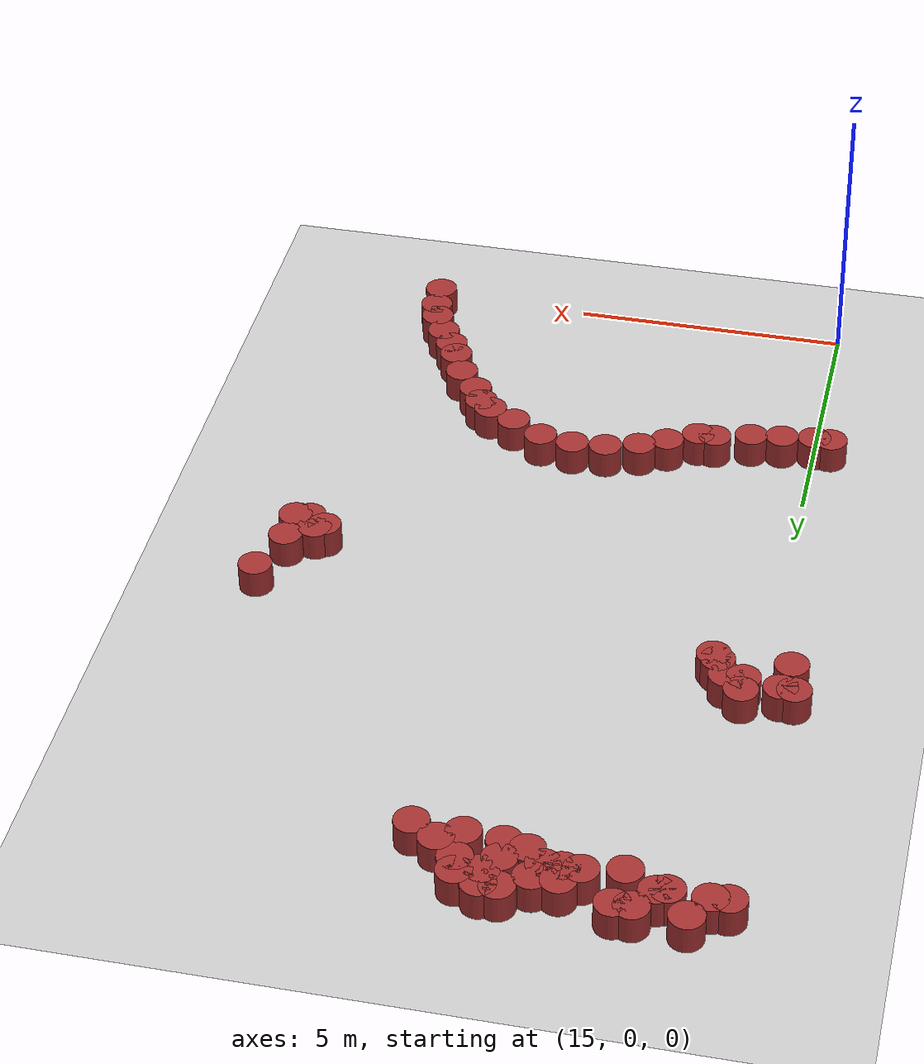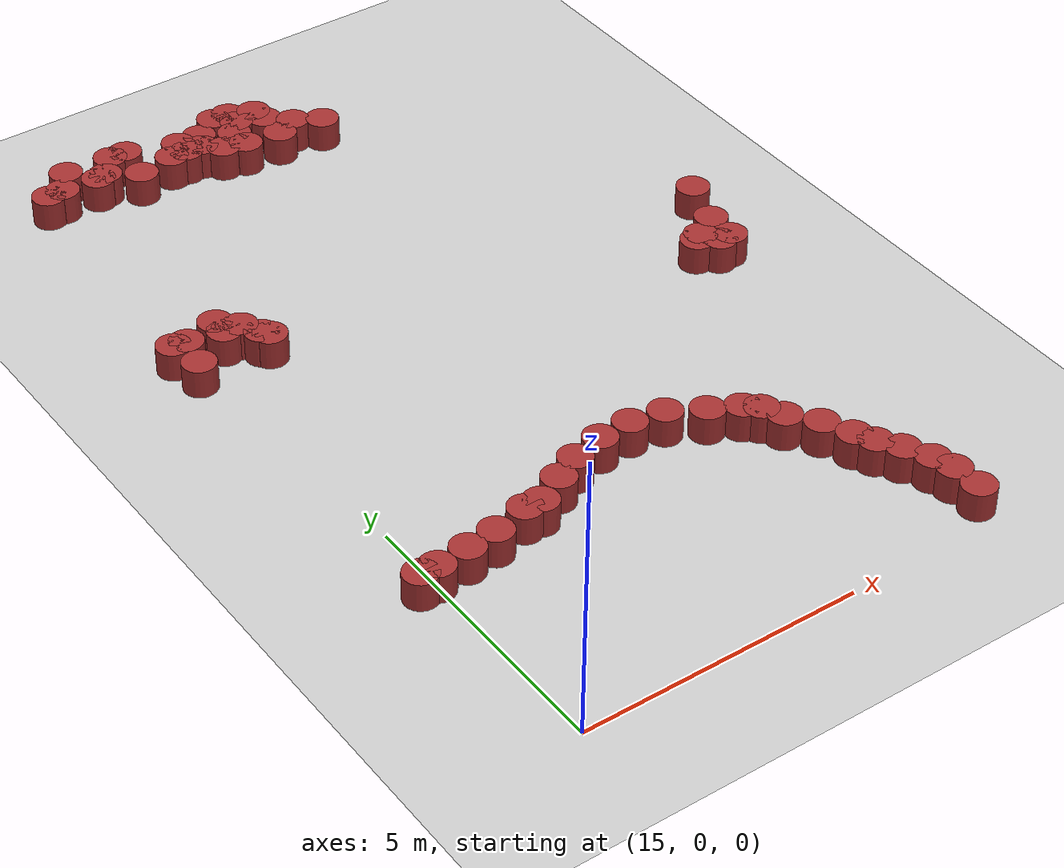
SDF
<sdf version="1.6">
 <world name="default">
  <model name="ground_plane">
   <static>1</static>
   <link name="link">
    <collision name="collision">
     <geometry><plane><normal>0 0 1</normal><size>100 100</size></plane></geometry>
     <surface><friction><ode><mu>100</mu><mu2>50</mu2></ode></friction></surface>
    </collision>
    <visual name="visual">
     <cast_shadows>0</cast_shadows>
     <geometry><plane><normal>0 0 1</normal><size>100 100</size></plane></geometry>
     <material>
      <script><uri>file://media/materials/scripts/gazebo.material</uri><name>Gazebo/Grey</name></script>
     </material>
    </visual>
   </link>
  </model>
  <model name="unit_cylinder_142">
   <static>1</static>
   <pose>15.8836 15.2044 0 0 -0 0</pose>
   <link name="link">
    <inertial>
     <mass>1</mass>
     <inertia><ixx>0.145833</ixx><ixy>0</ixy><ixz>0</ixz><iyy>0.145833</iyy><iyz>0</iyz><izz>0.125</izz></inertia>
    </inertial>
    <collision name="collision">
     <geometry><cylinder><radius>0.3</radius><length>1</length></cylinder></geometry>
    </collision>
    <visual name="visual">
     <geometry><cylinder><radius>0.3</radius><length>1</length></cylinder></geometry>
     <material><ambient>0.648 0.192 0.192 1</ambient><diffuse>0.648 0.192 0.192 1</diffuse></material>
     <material>
      <script><name>Gazebo/Grey</name><uri>file://media/materials/scripts/gazebo.material</uri></script>
     </material>
    </visual>
   </link>
  </model>
  <model name="unit_cylinder_145">
   <static>1</static>
   <pose>19.0275 15.414 0 0 -0 0</pose>
   <link name="link">
    <inertial>
     <mass>1</mass>
     <inertia><ixx>0.145833</ixx><ixy>0</ixy><ixz>0</ixz><iyy>0.145833</iyy><iyz>0</iyz><izz>0.125</izz></inertia>
    </inertial>
    <collision name="collision">
     <geometry><cylinder><radius>0.3</radius><length>1</length></cylinder></geometry>
    </collision>
    <visual name="visual">
     <geometry><cylinder><radius>0.3</radius><length>1</length></cylinder></geometry>
     <material><ambient>0.648 0.192 0.192 1</ambient><diffuse>0.648 0.192 0.192 1</diffuse></material>
     <material>
      <script><name>Gazebo/Grey</name><uri>file://media/materials/scripts/gazebo.material</uri></script>
     </material>
    </visual>
   </link>
  </model>
  <model name="unit_cylinder_150">
   <static>1</static>
   <pose>19.9186 14.5088 0 0 -0 0</pose>
   <link name="link">
    <inertial>
     <mass>1</mass>
     <inertia><ixx>0.145833</ixx><ixy>0</ixy><ixz>0</ixz><iyy>0.145833</iyy><iyz>0</iyz><izz>0.125</izz></inertia>
    </inertial>
    <collision name="collision">
     <geometry><cylinder><radius>0.3</radius><length>1</length></cylinder></geometry>
    </collision>
    <visual name="visual">
     <geometry><cylinder><radius>0.3</radius><length>1</length></cylinder></geometry>
     <material><ambient>0.648 0.192 0.192 1</ambient><diffuse>0.648 0.192 0.192 1</diffuse></material>
     <material>
      <script><name>Gazebo/Grey</name><uri>file://media/materials/scripts/gazebo.material</uri></script>
     </material>
    </visual>
   </link>
  </model>
  <model name="unit_cylinder_153">
   <static>1</static>
   <pose>14.7 3.6 0 0 -0 0</pose>
   <link name="link">
    <inertial>
     <mass>1</mass>
     <inertia><ixx>0.145833</ixx><ixy>0</ixy><ixz>0</ixz><iyy>0.145833</iyy><iyz>0</iyz><izz>0.125</izz></inertia>
    </inertial>
    <collision name="collision">
     <geometry><cylinder><radius>0.3</radius><length>1</length></cylinder></geometry>
    </collision>
    <visual name="visual">
     <geometry><cylinder><radius>0.3</radius><length>1</length></cylinder></geometry>
     <material><ambient>0.648 0.192 0.192 1</ambient><diffuse>0.648 0.192 0.192 1</diffuse></material>
     <material>
      <script><name>Gazebo/Grey</name><uri>file://media/materials/scripts/gazebo.material</uri></script>
     </material>
    </visual>
   </link>
  </model>
  <model name="unit_cylinder_154">
   <static>1</static>
   <pose>15.5873 3.66758 0 0 -0 0</pose>
   <link name="link">
    <inertial>
     <mass>1</mass>
     <inertia><ixx>0.145833</ixx><ixy>0</ixy><ixz>0</ixz><iyy>0.145833</iyy><iyz>0</iyz><izz>0.125</izz></inertia>
    </inertial>
    <collision name="collision">
     <geometry><cylinder><radius>0.3</radius><length>1</length></cylinder></geometry>
    </collision>
    <visual name="visual">
     <geometry><cylinder><radius>0.3</radius><length>1</length></cylinder></geometry>
     <material><ambient>0.648 0.192 0.192 1</ambient><diffuse>0.648 0.192 0.192 1</diffuse></material>
     <material>
      <script><name>Gazebo/Grey</name><uri>file://media/materials/scripts/gazebo.material</uri></script>
     </material>
    </visual>
   </link>
  </model>
  <model name="unit_cylinder_155">
   <static>1</static>
   <pose>16.1466 3.7358 0 0 -0 0</pose>
   <link name="link">
    <inertial>
     <mass>1</mass>
     <inertia><ixx>0.145833</ixx><ixy>0</ixy><ixz>0</ixz><iyy>0.145833</iyy><iyz>0</iyz><izz>0.125</izz></inertia>
    </inertial>
    <collision name="collision">
     <geometry><cylinder><radius>0.3</radius><length>1</length></cylinder></geometry>
    </collision>
    <visual name="visual">
     <geometry><cylinder><radius>0.3</radius><length>1</length></cylinder></geometry>
     <material><ambient>0.648 0.192 0.192 1</ambient><diffuse>0.648 0.192 0.192 1</diffuse></material>
     <material>
      <script><name>Gazebo/Grey</name><uri>file://media/materials/scripts/gazebo.material</uri></script>
     </material>
    </visual>
   </link>
  </model>
  <model name="unit_cylinder_159">
   <static>1</static>
   <pose>15 3.6 0 0 -0 0</pose>
   <link name="link">
    <inertial>
     <mass>1</mass>
     <inertia><ixx>0.145833</ixx><ixy>0</ixy><ixz>0</ixz><iyy>0.145833</iyy><iyz>0</iyz><izz>0.125</izz></inertia>
    </inertial>
    <collision name="collision">
     <geometry><cylinder><radius>0.3</radius><length>1</length></cylinder></geometry>
    </collision>
    <visual name="visual">
     <geometry><cylinder><radius>0.3</radius><length>1</length></cylinder></geometry>
     <material><ambient>0.648 0.192 0.192 1</ambient><diffuse>0.648 0.192 0.192 1</diffuse></material>
     <material>
      <script><name>Gazebo/Grey</name><uri>file://media/materials/scripts/gazebo.material</uri></script>
     </material>
    </visual>
   </link>
  </model>
  <model name="unit_cylinder_165">
   <static>1</static>
   <pose>19.4618 14.7761 0 0 -0 0</pose>
   <link name="link">
    <inertial>
     <mass>1</mass>
     <inertia><ixx>0.145833</ixx><ixy>0</ixy><ixz>0</ixz><iyy>0.145833</iyy><iyz>0</iyz><izz>0.125</izz></inertia>
    </inertial>
    <collision name="collision">
     <geometry><cylinder><radius>0.3</radius><length>1</length></cylinder></geometry>
    </collision>
    <visual name="visual">
     <geometry><cylinder><radius>0.3</radius><length>1</length></cylinder></geometry>
     <material><ambient>0.648 0.192 0.192 1</ambient><diffuse>0.648 0.192 0.192 1</diffuse></material>
     <material>
      <script><name>Gazebo/Grey</name><uri>file://media/materials/scripts/gazebo.material</uri></script>
     </material>
    </visual>
   </link>
  </model>
  <model name="unit_cylinder_166">
   <static>1</static>
   <pose>15.3 10.2 0 0 -0 0</pose>
   <link name="link">
    <inertial>
     <mass>1</mass>
     <inertia><ixx>0.145833</ixx><ixy>0</ixy><ixz>0</ixz><iyy>0.145833</iyy><iyz>0</iyz><izz>0.125</izz></inertia>
    </inertial>
    <collision name="collision">
     <geometry><cylinder><radius>0.3</radius><length>1</length></cylinder></geometry>
    </collision>
    <visual name="visual">
     <geometry><cylinder><radius>0.3</radius><length>1</length></cylinder></geometry>
     <material><ambient>0.648 0.192 0.192 1</ambient><diffuse>0.648 0.192 0.192 1</diffuse></material>
     <material>
      <script><name>Gazebo/Grey</name><uri>file://media/materials/scripts/gazebo.material</uri></script>
     </material>
    </visual>
   </link>
  </model>
  <model name="unit_cylinder_167">
   <static>1</static>
   <pose>15.3 10.5 0 0 -0 0</pose>
   <link name="link">
    <inertial>
     <mass>1</mass>
     <inertia><ixx>0.145833</ixx><ixy>0</ixy><ixz>0</ixz><iyy>0.145833</iyy><iyz>0</iyz><izz>0.125</izz></inertia>
    </inertial>
    <collision name="collision">
     <geometry><cylinder><radius>0.3</radius><length>1</length></cylinder></geometry>
    </collision>
    <visual name="visual">
     <geometry><cylinder><radius>0.3</radius><length>1</length></cylinder></geometry>
     <material><ambient>0.648 0.192 0.192 1</ambient><diffuse>0.648 0.192 0.192 1</diffuse></material>
     <material>
      <script><name>Gazebo/Grey</name><uri>file://media/materials/scripts/gazebo.material</uri></script>
     </material>
    </visual>
   </link>
  </model>
  <model name="unit_cylinder_169">
   <static>1</static>
   <pose>15.0403 15.1927 0 0 -0 0</pose>
   <link name="link">
    <inertial>
     <mass>1</mass>
     <inertia><ixx>0.145833</ixx><ixy>0</ixy><ixz>0</ixz><iyy>0.145833</iyy><iyz>0</iyz><izz>0.125</izz></inertia>
    </inertial>
    <collision name="collision">
     <geometry><cylinder><radius>0.3</radius><length>1</length></cylinder></geometry>
    </collision>
    <visual name="visual">
     <geometry><cylinder><radius>0.3</radius><length>1</length></cylinder></geometry>
     <material><ambient>0.648 0.192 0.192 1</ambient><diffuse>0.648 0.192 0.192 1</diffuse></material>
     <material>
      <script><name>Gazebo/Grey</name><uri>file://media/materials/scripts/gazebo.material</uri></script>
     </material>
    </visual>
   </link>
  </model>
  <model name="unit_cylinder_177">
   <static>1</static>
   <pose>15.6 10.2 0 0 -0 0</pose>
   <link name="link">
    <inertial>
     <mass>1</mass>
     <inertia><ixx>0.145833</ixx><ixy>0</ixy><ixz>0</ixz><iyy>0.145833</iyy><iyz>0</iyz><izz>0.125</izz></inertia>
    </inertial>
    <collision name="collision">
     <geometry><cylinder><radius>0.3</radius><length>1</length></cylinder></geometry>
    </collision>
    <visual name="visual">
     <geometry><cylinder><radius>0.3</radius><length>1</length></cylinder></geometry>
     <material><ambient>0.648 0.192 0.192 1</ambient><diffuse>0.648 0.192 0.192 1</diffuse></material>
     <material>
      <script><name>Gazebo/Grey</name><uri>file://media/materials/scripts/gazebo.material</uri></script>
     </material>
    </visual>
   </link>
  </model>
  <model name="unit_cylinder_186">
   <static>1</static>
   <pose>14.7565 15.1673 0 0 -0 0</pose>
   <link name="link">
    <inertial>
     <mass>1</mass>
     <inertia><ixx>0.145833</ixx><ixy>0</ixy><ixz>0</ixz><iyy>0.145833</iyy><iyz>0</iyz><izz>0.125</izz></inertia>
    </inertial>
    <collision name="collision">
     <geometry><cylinder><radius>0.3</radius><length>1</length></cylinder></geometry>
    </collision>
    <visual name="visual">
     <geometry><cylinder><radius>0.3</radius><length>1</length></cylinder></geometry>
     <material><ambient>0.648 0.192 0.192 1</ambient><diffuse>0.648 0.192 0.192 1</diffuse></material>
     <material>
      <script><name>Gazebo/Grey</name><uri>file://media/materials/scripts/gazebo.material</uri></script>
     </material>
    </visual>
   </link>
  </model>
  <model name="unit_cylinder_187">
   <static>1</static>
   <pose>15.7201 15.1528 0 0 -0 0</pose>
   <link name="link">
    <inertial>
     <mass>1</mass>
     <inertia><ixx>0.145833</ixx><ixy>0</ixy><ixz>0</ixz><iyy>0.145833</iyy><iyz>0</iyz><izz>0.125</izz></inertia>
    </inertial>
    <collision name="collision">
     <geometry><cylinder><radius>0.3</radius><length>1</length></cylinder></geometry>
    </collision>
    <visual name="visual">
     <geometry><cylinder><radius>0.3</radius><length>1</length></cylinder></geometry>
     <material><ambient>0.648 0.192 0.192 1</ambient><diffuse>0.648 0.192 0.192 1</diffuse></material>
     <material>
      <script><name>Gazebo/Grey</name><uri>file://media/materials/scripts/gazebo.material</uri></script>
     </material>
    </visual>
   </link>
  </model>
  <model name="unit_cylinder_191">
   <static>1</static>
   <pose>16.2 15.6 0 0 -0 0</pose>
   <link name="link">
    <inertial>
     <mass>1</mass>
     <inertia><ixx>0.145833</ixx><ixy>0</ixy><ixz>0</ixz><iyy>0.145833</iyy><iyz>0</iyz><izz>0.125</izz></inertia>
    </inertial>
    <collision name="collision">
     <geometry><cylinder><radius>0.3</radius><length>1</length></cylinder></geometry>
    </collision>
    <visual name="visual">
     <geometry><cylinder><radius>0.3</radius><length>1</length></cylinder></geometry>
     <material><ambient>0.648 0.192 0.192 1</ambient><diffuse>0.648 0.192 0.192 1</diffuse></material>
     <material>
      <script><name>Gazebo/Grey</name><uri>file://media/materials/scripts/gazebo.material</uri></script>
     </material>
    </visual>
   </link>
  </model>
  <model name="unit_cylinder_197">
   <static>1</static>
   <pose>16.5 15.6 0 0 -0 0</pose>
   <link name="link">
    <inertial>
     <mass>1</mass>
     <inertia><ixx>0.145833</ixx><ixy>0</ixy><ixz>0</ixz><iyy>0.145833</iyy><iyz>0</iyz><izz>0.125</izz></inertia>
    </inertial>
    <collision name="collision">
     <geometry><cylinder><radius>0.3</radius><length>1</length></cylinder></geometry>
    </collision>
    <visual name="visual">
     <geometry><cylinder><radius>0.3</radius><length>1</length></cylinder></geometry>
     <material><ambient>0.648 0.192 0.192 1</ambient><diffuse>0.648 0.192 0.192 1</diffuse></material>
     <material>
      <script><name>Gazebo/Grey</name><uri>file://media/materials/scripts/gazebo.material</uri></script>
     </material>
    </visual>
   </link>
  </model>
  <model name="unit_cylinder_199">
   <static>1</static>
   <pose>17.6306 4.17821 0 0 -0 0</pose>
   <link name="link">
    <inertial>
     <mass>1</mass>
     <inertia><ixx>0.145833</ixx><ixy>0</ixy><ixz>0</ixz><iyy>0.145833</iyy><iyz>0</iyz><izz>0.125</izz></inertia>
    </inertial>
    <collision name="collision">
     <geometry><cylinder><radius>0.3</radius><length>1</length></cylinder></geometry>
    </collision>
    <visual name="visual">
     <geometry><cylinder><radius>0.3</radius><length>1</length></cylinder></geometry>
     <material><ambient>0.648 0.192 0.192 1</ambient><diffuse>0.648 0.192 0.192 1</diffuse></material>
     <material>
      <script><name>Gazebo/Grey</name><uri>file://media/materials/scripts/gazebo.material</uri></script>
     </material>
    </visual>
   </link>
  </model>
  <model name="unit_cylinder_200">
   <static>1</static>
   <pose>16.8 3.9 0 0 -0 0</pose>
   <link name="link">
    <inertial>
     <mass>1</mass>
     <inertia><ixx>0.145833</ixx><ixy>0</ixy><ixz>0</ixz><iyy>0.145833</iyy><iyz>0</iyz><izz>0.125</izz></inertia>
    </inertial>
    <collision name="collision">
     <geometry><cylinder><radius>0.3</radius><length>1</length></cylinder></geometry>
    </collision>
    <visual name="visual">
     <geometry><cylinder><radius>0.3</radius><length>1</length></cylinder></geometry>
     <material><ambient>0.648 0.192 0.192 1</ambient><diffuse>0.648 0.192 0.192 1</diffuse></material>
     <material>
      <script><name>Gazebo/Grey</name><uri>file://media/materials/scripts/gazebo.material</uri></script>
     </material>
    </visual>
   </link>
  </model>
  <model name="unit_cylinder_203">
   <static>1</static>
   <pose>17.1 3.9 0 0 -0 0</pose>
   <link name="link">
    <inertial>
     <mass>1</mass>
     <inertia><ixx>0.145833</ixx><ixy>0</ixy><ixz>0</ixz><iyy>0.145833</iyy><iyz>0</iyz><izz>0.125</izz></inertia>
    </inertial>
    <collision name="collision">
     <geometry><cylinder><radius>0.3</radius><length>1</length></cylinder></geometry>
    </collision>
    <visual name="visual">
     <geometry><cylinder><radius>0.3</radius><length>1</length></cylinder></geometry>
     <material><ambient>0.648 0.192 0.192 1</ambient><diffuse>0.648 0.192 0.192 1</diffuse></material>
     <material>
      <script><name>Gazebo/Grey</name><uri>file://media/materials/scripts/gazebo.material</uri></script>
     </material>
    </visual>
   </link>
  </model>
  <model name="unit_cylinder_204">
   <static>1</static>
   <pose>17.1 15 0 0 -0 0</pose>
   <link name="link">
    <inertial>
     <mass>1</mass>
     <inertia><ixx>0.145833</ixx><ixy>0</ixy><ixz>0</ixz><iyy>0.145833</iyy><iyz>0</iyz><izz>0.125</izz></inertia>
    </inertial>
    <collision name="collision">
     <geometry><cylinder><radius>0.3</radius><length>1</length></cylinder></geometry>
    </collision>
    <visual name="visual">
     <geometry><cylinder><radius>0.3</radius><length>1</length></cylinder></geometry>
     <material><ambient>0.648 0.192 0.192 1</ambient><diffuse>0.648 0.192 0.192 1</diffuse></material>
     <material>
      <script><name>Gazebo/Grey</name><uri>file://media/materials/scripts/gazebo.material</uri></script>
     </material>
    </visual>
   </link>
  </model>
  <model name="unit_cylinder_212">
   <static>1</static>
   <pose>17.4 15 0 0 -0 0</pose>
   <link name="link">
    <inertial>
     <mass>1</mass>
     <inertia><ixx>0.145833</ixx><ixy>0</ixy><ixz>0</ixz><iyy>0.145833</iyy><iyz>0</iyz><izz>0.125</izz></inertia>
    </inertial>
    <collision name="collision">
     <geometry><cylinder><radius>0.3</radius><length>1</length></cylinder></geometry>
    </collision>
    <visual name="visual">
     <geometry><cylinder><radius>0.3</radius><length>1</length></cylinder></geometry>
     <material><ambient>0.648 0.192 0.192 1</ambient><diffuse>0.648 0.192 0.192 1</diffuse></material>
     <material>
      <script><name>Gazebo/Grey</name><uri>file://media/materials/scripts/gazebo.material</uri></script>
     </material>
    </visual>
   </link>
  </model>
  <model name="unit_cylinder_213">
   <static>1</static>
   <pose>17.4 15.3 0 0 -0 0</pose>
   <link name="link">
    <inertial>
     <mass>1</mass>
     <inertia><ixx>0.145833</ixx><ixy>0</ixy><ixz>0</ixz><iyy>0.145833</iyy><iyz>0</iyz><izz>0.125</izz></inertia>
    </inertial>
    <collision name="collision">
     <geometry><cylinder><radius>0.3</radius><length>1</length></cylinder></geometry>
    </collision>
    <visual name="visual">
     <geometry><cylinder><radius>0.3</radius><length>1</length></cylinder></geometry>
     <material><ambient>0.648 0.192 0.192 1</ambient><diffuse>0.648 0.192 0.192 1</diffuse></material>
     <material>
      <script><name>Gazebo/Grey</name><uri>file://media/materials/scripts/gazebo.material</uri></script>
     </material>
    </visual>
   </link>
  </model>
  <model name="unit_cylinder_218">
   <static>1</static>
   <pose>18.0017 14.7329 0 0 -0 0</pose>
   <link name="link">
    <inertial>
     <mass>1</mass>
     <inertia><ixx>0.145833</ixx><ixy>0</ixy><ixz>0</ixz><iyy>0.145833</iyy><iyz>0</iyz><izz>0.125</izz></inertia>
    </inertial>
    <collision name="collision">
     <geometry><cylinder><radius>0.3</radius><length>1</length></cylinder></geometry>
    </collision>
    <visual name="visual">
     <geometry><cylinder><radius>0.3</radius><length>1</length></cylinder></geometry>
     <material><ambient>0.648 0.192 0.192 1</ambient><diffuse>0.648 0.192 0.192 1</diffuse></material>
     <material>
      <script><name>Gazebo/Grey</name><uri>file://media/materials/scripts/gazebo.material</uri></script>
     </material>
    </visual>
   </link>
  </model>
  <model name="unit_cylinder_219">
   <static>1</static>
   <pose>17.7 15 0 0 -0 0</pose>
   <link name="link">
    <inertial>
     <mass>1</mass>
     <inertia><ixx>0.145833</ixx><ixy>0</ixy><ixz>0</ixz><iyy>0.145833</iyy><iyz>0</iyz><izz>0.125</izz></inertia>
    </inertial>
    <collision name="collision">
     <geometry><cylinder><radius>0.3</radius><length>1</length></cylinder></geometry>
    </collision>
    <visual name="visual">
     <geometry><cylinder><radius>0.3</radius><length>1</length></cylinder></geometry>
     <material><ambient>0.648 0.192 0.192 1</ambient><diffuse>0.648 0.192 0.192 1</diffuse></material>
     <material>
      <script><name>Gazebo/Grey</name><uri>file://media/materials/scripts/gazebo.material</uri></script>
     </material>
    </visual>
   </link>
  </model>
  <model name="unit_cylinder_226">
   <static>1</static>
   <pose>18.3 15.6 0 0 -0 0</pose>
   <link name="link">
    <inertial>
     <mass>1</mass>
     <inertia><ixx>0.145833</ixx><ixy>0</ixy><ixz>0</ixz><iyy>0.145833</iyy><iyz>0</iyz><izz>0.125</izz></inertia>
    </inertial>
    <collision name="collision">
     <geometry><cylinder><radius>0.3</radius><length>1</length></cylinder></geometry>
    </collision>
    <visual name="visual">
     <geometry><cylinder><radius>0.3</radius><length>1</length></cylinder></geometry>
     <material><ambient>0.648 0.192 0.192 1</ambient><diffuse>0.648 0.192 0.192 1</diffuse></material>
     <material>
      <script><name>Gazebo/Grey</name><uri>file://media/materials/scripts/gazebo.material</uri></script>
     </material>
    </visual>
   </link>
  </model>
  <model name="unit_cylinder_227">
   <static>1</static>
   <pose>18.6 15.3 0 0 -0 0</pose>
   <link name="link">
    <inertial>
     <mass>1</mass>
     <inertia><ixx>0.145833</ixx><ixy>0</ixy><ixz>0</ixz><iyy>0.145833</iyy><iyz>0</iyz><izz>0.125</izz></inertia>
    </inertial>
    <collision name="collision">
     <geometry><cylinder><radius>0.3</radius><length>1</length></cylinder></geometry>
    </collision>
    <visual name="visual">
     <geometry><cylinder><radius>0.3</radius><length>1</length></cylinder></geometry>
     <material><ambient>0.648 0.192 0.192 1</ambient><diffuse>0.648 0.192 0.192 1</diffuse></material>
     <material>
      <script><name>Gazebo/Grey</name><uri>file://media/materials/scripts/gazebo.material</uri></script>
     </material>
    </visual>
   </link>
  </model>
  <model name="unit_cylinder_228">
   <static>1</static>
   <pose>18.6 15.6 0 0 -0 0</pose>
   <link name="link">
    <inertial>
     <mass>1</mass>
     <inertia><ixx>0.145833</ixx><ixy>0</ixy><ixz>0</ixz><iyy>0.145833</iyy><iyz>0</iyz><izz>0.125</izz></inertia>
    </inertial>
    <collision name="collision">
     <geometry><cylinder><radius>0.3</radius><length>1</length></cylinder></geometry>
    </collision>
    <visual name="visual">
     <geometry><cylinder><radius>0.3</radius><length>1</length></cylinder></geometry>
     <material><ambient>0.648 0.192 0.192 1</ambient><diffuse>0.648 0.192 0.192 1</diffuse></material>
     <material>
      <script><name>Gazebo/Grey</name><uri>file://media/materials/scripts/gazebo.material</uri></script>
     </material>
    </visual>
   </link>
  </model>
  <model name="unit_cylinder_241">
   <static>1</static>
   <pose>18.7087 4.56925 0 0 -0 0</pose>
   <link name="link">
    <inertial>
     <mass>1</mass>
     <inertia><ixx>0.145833</ixx><ixy>0</ixy><ixz>0</ixz><iyy>0.145833</iyy><iyz>0</iyz><izz>0.125</izz></inertia>
    </inertial>
    <collision name="collision">
     <geometry><cylinder><radius>0.3</radius><length>1</length></cylinder></geometry>
    </collision>
    <visual name="visual">
     <geometry><cylinder><radius>0.3</radius><length>1</length></cylinder></geometry>
     <material><ambient>0.648 0.192 0.192 1</ambient><diffuse>0.648 0.192 0.192 1</diffuse></material>
     <material>
      <script><name>Gazebo/Grey</name><uri>file://media/materials/scripts/gazebo.material</uri></script>
     </material>
    </visual>
   </link>
  </model>
  <model name="unit_cylinder_242">
   <static>1</static>
   <pose>18.1102 4.40651 0 0 -0 0</pose>
   <link name="link">
    <inertial>
     <mass>1</mass>
     <inertia><ixx>0.145833</ixx><ixy>0</ixy><ixz>0</ixz><iyy>0.145833</iyy><iyz>0</iyz><izz>0.125</izz></inertia>
    </inertial>
    <collision name="collision">
     <geometry><cylinder><radius>0.3</radius><length>1</length></cylinder></geometry>
    </collision>
    <visual name="visual">
     <geometry><cylinder><radius>0.3</radius><length>1</length></cylinder></geometry>
     <material><ambient>0.648 0.192 0.192 1</ambient><diffuse>0.648 0.192 0.192 1</diffuse></material>
     <material>
      <script><name>Gazebo/Grey</name><uri>file://media/materials/scripts/gazebo.material</uri></script>
     </material>
    </visual>
   </link>
  </model>
  <model name="unit_cylinder_246">
   <static>1</static>
   <pose>19.3171 4.60775 0 0 -0 0</pose>
   <link name="link">
    <inertial>
     <mass>1</mass>
     <inertia><ixx>0.145833</ixx><ixy>0</ixy><ixz>0</ixz><iyy>0.145833</iyy><iyz>0</iyz><izz>0.125</izz></inertia>
    </inertial>
    <collision name="collision">
     <geometry><cylinder><radius>0.3</radius><length>1</length></cylinder></geometry>
    </collision>
    <visual name="visual">
     <geometry><cylinder><radius>0.3</radius><length>1</length></cylinder></geometry>
     <material><ambient>0.648 0.192 0.192 1</ambient><diffuse>0.648 0.192 0.192 1</diffuse></material>
     <material>
      <script><name>Gazebo/Grey</name><uri>file://media/materials/scripts/gazebo.material</uri></script>
     </material>
    </visual>
   </link>
  </model>
  <model name="unit_cylinder_250">
   <static>1</static>
   <pose>15.3393 15.6295 0 0 -0 0</pose>
   <link name="link">
    <inertial>
     <mass>1</mass>
     <inertia><ixx>0.145833</ixx><ixy>0</ixy><ixz>0</ixz><iyy>0.145833</iyy><iyz>0</iyz><izz>0.125</izz></inertia>
    </inertial>
    <collision name="collision">
     <geometry><cylinder><radius>0.3</radius><length>1</length></cylinder></geometry>
    </collision>
    <visual name="visual">
     <geometry><cylinder><radius>0.3</radius><length>1</length></cylinder></geometry>
     <material><ambient>0.648 0.192 0.192 1</ambient><diffuse>0.648 0.192 0.192 1</diffuse></material>
     <material>
      <script><name>Gazebo/Grey</name><uri>file://media/materials/scripts/gazebo.material</uri></script>
     </material>
    </visual>
   </link>
  </model>
  <model name="unit_cylinder_255">
   <static>1</static>
   <pose>20.5074 4.15937 0 0 -0 0</pose>
   <link name="link">
    <inertial>
     <mass>1</mass>
     <inertia><ixx>0.145833</ixx><ixy>0</ixy><ixz>0</ixz><iyy>0.145833</iyy><iyz>0</iyz><izz>0.125</izz></inertia>
    </inertial>
    <collision name="collision">
     <geometry><cylinder><radius>0.3</radius><length>1</length></cylinder></geometry>
    </collision>
    <visual name="visual">
     <geometry><cylinder><radius>0.3</radius><length>1</length></cylinder></geometry>
     <material><ambient>0.648 0.192 0.192 1</ambient><diffuse>0.648 0.192 0.192 1</diffuse></material>
     <material>
      <script><name>Gazebo/Grey</name><uri>file://media/materials/scripts/gazebo.material</uri></script>
     </material>
    </visual>
   </link>
  </model>
  <model name="unit_cylinder_256">
   <static>1</static>
   <pose>19.9292 4.49893 0 0 -0 0</pose>
   <link name="link">
    <inertial>
     <mass>1</mass>
     <inertia><ixx>0.145833</ixx><ixy>0</ixy><ixz>0</ixz><iyy>0.145833</iyy><iyz>0</iyz><izz>0.125</izz></inertia>
    </inertial>
    <collision name="collision">
     <geometry><cylinder><radius>0.3</radius><length>1</length></cylinder></geometry>
    </collision>
    <visual name="visual">
     <geometry><cylinder><radius>0.3</radius><length>1</length></cylinder></geometry>
     <material><ambient>0.648 0.192 0.192 1</ambient><diffuse>0.648 0.192 0.192 1</diffuse></material>
     <material>
      <script><name>Gazebo/Grey</name><uri>file://media/materials/scripts/gazebo.material</uri></script>
     </material>
    </visual>
   </link>
  </model>
  <model name="unit_cylinder_257">
   <static>1</static>
   <pose>15.7901 9.84375 0 0 -0 0</pose>
   <link name="link">
    <inertial>
     <mass>1</mass>
     <inertia><ixx>0.145833</ixx><ixy>0</ixy><ixz>0</ixz><iyy>0.145833</iyy><iyz>0</iyz><izz>0.125</izz></inertia>
    </inertial>
    <collision name="collision">
     <geometry><cylinder><radius>0.3</radius><length>1</length></cylinder></geometry>
    </collision>
    <visual name="visual">
     <geometry><cylinder><radius>0.3</radius><length>1</length></cylinder></geometry>
     <material><ambient>0.648 0.192 0.192 1</ambient><diffuse>0.648 0.192 0.192 1</diffuse></material>
     <material>
      <script><name>Gazebo/Grey</name><uri>file://media/materials/scripts/gazebo.material</uri></script>
     </material>
    </visual>
   </link>
  </model>
  <model name="unit_cylinder_258">
   <static>1</static>
   <pose>15.8787 9.72303 0 0 -0 0</pose>
   <link name="link">
    <inertial>
     <mass>1</mass>
     <inertia><ixx>0.145833</ixx><ixy>0</ixy><ixz>0</ixz><iyy>0.145833</iyy><iyz>0</iyz><izz>0.125</izz></inertia>
    </inertial>
    <collision name="collision">
     <geometry><cylinder><radius>0.3</radius><length>1</length></cylinder></geometry>
    </collision>
    <visual name="visual">
     <geometry><cylinder><radius>0.3</radius><length>1</length></cylinder></geometry>
     <material><ambient>0.648 0.192 0.192 1</ambient><diffuse>0.648 0.192 0.192 1</diffuse></material>
     <material>
      <script><name>Gazebo/Grey</name><uri>file://media/materials/scripts/gazebo.material</uri></script>
     </material>
    </visual>
   </link>
  </model>
  <model name="unit_cylinder_263">
   <static>1</static>
   <pose>21.2218 3.70108 0 0 -0 0</pose>
   <link name="link">
    <inertial>
     <mass>1</mass>
     <inertia><ixx>0.145833</ixx><ixy>0</ixy><ixz>0</ixz><iyy>0.145833</iyy><iyz>0</iyz><izz>0.125</izz></inertia>
    </inertial>
    <collision name="collision">
     <geometry><cylinder><radius>0.3</radius><length>1</length></cylinder></geometry>
    </collision>
    <visual name="visual">
     <geometry><cylinder><radius>0.3</radius><length>1</length></cylinder></geometry>
     <material><ambient>0.648 0.192 0.192 1</ambient><diffuse>0.648 0.192 0.192 1</diffuse></material>
     <material>
      <script><name>Gazebo/Grey</name><uri>file://media/materials/scripts/gazebo.material</uri></script>
     </material>
    </visual>
   </link>
  </model>
  <model name="unit_cylinder_264">
   <static>1</static>
   <pose>22.0026 2.38657 0 0 -0 0</pose>
   <link name="link">
    <inertial>
     <mass>1</mass>
     <inertia><ixx>0.145833</ixx><ixy>0</ixy><ixz>0</ixz><iyy>0.145833</iyy><iyz>0</iyz><izz>0.125</izz></inertia>
    </inertial>
    <collision name="collision">
     <geometry><cylinder><radius>0.3</radius><length>1</length></cylinder></geometry>
    </collision>
    <visual name="visual">
     <geometry><cylinder><radius>0.3</radius><length>1</length></cylinder></geometry>
     <material><ambient>0.648 0.192 0.192 1</ambient><diffuse>0.648 0.192 0.192 1</diffuse></material>
     <material>
      <script><name>Gazebo/Grey</name><uri>file://media/materials/scripts/gazebo.material</uri></script>
     </material>
    </visual>
   </link>
  </model>
  <model name="unit_cylinder_265">
   <static>1</static>
   <pose>21 3.9 0 0 -0 0</pose>
   <link name="link">
    <inertial>
     <mass>1</mass>
     <inertia><ixx>0.145833</ixx><ixy>0</ixy><ixz>0</ixz><iyy>0.145833</iyy><iyz>0</iyz><izz>0.125</izz></inertia>
    </inertial>
    <collision name="collision">
     <geometry><cylinder><radius>0.3</radius><length>1</length></cylinder></geometry>
    </collision>
    <visual name="visual">
     <geometry><cylinder><radius>0.3</radius><length>1</length></cylinder></geometry>
     <material><ambient>0.648 0.192 0.192 1</ambient><diffuse>0.648 0.192 0.192 1</diffuse></material>
     <material>
      <script><name>Gazebo/Grey</name><uri>file://media/materials/scripts/gazebo.material</uri></script>
     </material>
    </visual>
   </link>
  </model>
  <model name="unit_cylinder_266">
   <static>1</static>
   <pose>14.4304 10.3456 0 0 -0 0</pose>
   <link name="link">
    <inertial>
     <mass>1</mass>
     <inertia><ixx>0.145833</ixx><ixy>0</ixy><ixz>0</ixz><iyy>0.145833</iyy><iyz>0</iyz><izz>0.125</izz></inertia>
    </inertial>
    <collision name="collision">
     <geometry><cylinder><radius>0.3</radius><length>1</length></cylinder></geometry>
    </collision>
    <visual name="visual">
     <geometry><cylinder><radius>0.3</radius><length>1</length></cylinder></geometry>
     <material><ambient>0.648 0.192 0.192 1</ambient><diffuse>0.648 0.192 0.192 1</diffuse></material>
     <material>
      <script><name>Gazebo/Grey</name><uri>file://media/materials/scripts/gazebo.material</uri></script>
     </material>
    </visual>
   </link>
  </model>
  <model name="unit_cylinder_267">
   <static>1</static>
   <pose>19.065 14.564 0 0 -0 0</pose>
   <link name="link">
    <inertial>
     <mass>1</mass>
     <inertia><ixx>0.145833</ixx><ixy>0</ixy><ixz>0</ixz><iyy>0.145833</iyy><iyz>0</iyz><izz>0.125</izz></inertia>
    </inertial>
    <collision name="collision">
     <geometry><cylinder><radius>0.3</radius><length>1</length></cylinder></geometry>
    </collision>
    <visual name="visual">
     <geometry><cylinder><radius>0.3</radius><length>1</length></cylinder></geometry>
     <material><ambient>0.648 0.192 0.192 1</ambient><diffuse>0.648 0.192 0.192 1</diffuse></material>
     <material>
      <script><name>Gazebo/Grey</name><uri>file://media/materials/scripts/gazebo.material</uri></script>
     </material>
    </visual>
   </link>
  </model>
  <model name="unit_cylinder_271">
   <static>1</static>
   <pose>21.7749 2.89176 0 0 -0 0</pose>
   <link name="link">
    <inertial>
     <mass>1</mass>
     <inertia><ixx>0.145833</ixx><ixy>0</ixy><ixz>0</ixz><iyy>0.145833</iyy><iyz>0</iyz><izz>0.125</izz></inertia>
    </inertial>
    <collision name="collision">
     <geometry><cylinder><radius>0.3</radius><length>1</length></cylinder></geometry>
    </collision>
    <visual name="visual">
     <geometry><cylinder><radius>0.3</radius><length>1</length></cylinder></geometry>
     <material><ambient>0.648 0.192 0.192 1</ambient><diffuse>0.648 0.192 0.192 1</diffuse></material>
     <material>
      <script><name>Gazebo/Grey</name><uri>file://media/materials/scripts/gazebo.material</uri></script>
     </material>
    </visual>
   </link>
  </model>
  <model name="unit_cylinder_272">
   <static>1</static>
   <pose>21.4074 3.35437 0 0 -0 0</pose>
   <link name="link">
    <inertial>
     <mass>1</mass>
     <inertia><ixx>0.145833</ixx><ixy>0</ixy><ixz>0</ixz><iyy>0.145833</iyy><iyz>0</iyz><izz>0.125</izz></inertia>
    </inertial>
    <collision name="collision">
     <geometry><cylinder><radius>0.3</radius><length>1</length></cylinder></geometry>
    </collision>
    <visual name="visual">
     <geometry><cylinder><radius>0.3</radius><length>1</length></cylinder></geometry>
     <material><ambient>0.648 0.192 0.192 1</ambient><diffuse>0.648 0.192 0.192 1</diffuse></material>
     <material>
      <script><name>Gazebo/Grey</name><uri>file://media/materials/scripts/gazebo.material</uri></script>
     </material>
    </visual>
   </link>
  </model>
  <model name="unit_cylinder_273">
   <static>1</static>
   <pose>18.3994 14.6304 0 0 -0 0</pose>
   <link name="link">
    <inertial>
     <mass>1</mass>
     <inertia><ixx>0.145833</ixx><ixy>0</ixy><ixz>0</ixz><iyy>0.145833</iyy><iyz>0</iyz><izz>0.125</izz></inertia>
    </inertial>
    <collision name="collision">
     <geometry><cylinder><radius>0.3</radius><length>1</length></cylinder></geometry>
    </collision>
    <visual name="visual">
     <geometry><cylinder><radius>0.3</radius><length>1</length></cylinder></geometry>
     <material><ambient>0.648 0.192 0.192 1</ambient><diffuse>0.648 0.192 0.192 1</diffuse></material>
     <material>
      <script><name>Gazebo/Grey</name><uri>file://media/materials/scripts/gazebo.material</uri></script>
     </material>
    </visual>
   </link>
  </model>
  <model name="unit_cylinder_274">
   <static>1</static>
   <pose>17.834 15.2993 0 0 -0 0</pose>
   <link name="link">
    <inertial>
     <mass>1</mass>
     <inertia><ixx>0.145833</ixx><ixy>0</ixy><ixz>0</ixz><iyy>0.145833</iyy><iyz>0</iyz><izz>0.125</izz></inertia>
    </inertial>
    <collision name="collision">
     <geometry><cylinder><radius>0.3</radius><length>1</length></cylinder></geometry>
    </collision>
    <visual name="visual">
     <geometry><cylinder><radius>0.3</radius><length>1</length></cylinder></geometry>
     <material><ambient>0.648 0.192 0.192 1</ambient><diffuse>0.648 0.192 0.192 1</diffuse></material>
     <material>
      <script><name>Gazebo/Grey</name><uri>file://media/materials/scripts/gazebo.material</uri></script>
     </material>
    </visual>
   </link>
  </model>
  <model name="unit_cylinder_291">
   <static>1</static>
   <pose>22.6258 1.25954 0 0 -0 0</pose>
   <link name="link">
    <inertial>
     <mass>1</mass>
     <inertia><ixx>0.145833</ixx><ixy>0</ixy><ixz>0</ixz><iyy>0.145833</iyy><iyz>0</iyz><izz>0.125</izz></inertia>
    </inertial>
    <collision name="collision">
     <geometry><cylinder><radius>0.3</radius><length>1</length></cylinder></geometry>
    </collision>
    <visual name="visual">
     <geometry><cylinder><radius>0.3</radius><length>1</length></cylinder></geometry>
     <material><ambient>0.648 0.192 0.192 1</ambient><diffuse>0.648 0.192 0.192 1</diffuse></material>
     <material>
      <script><name>Gazebo/Grey</name><uri>file://media/materials/scripts/gazebo.material</uri></script>
     </material>
    </visual>
   </link>
  </model>
  <model name="unit_cylinder_292">
   <static>1</static>
   <pose>22.1648 2.06993 0 0 -0 0</pose>
   <link name="link">
    <inertial>
     <mass>1</mass>
     <inertia><ixx>0.145833</ixx><ixy>0</ixy><ixz>0</ixz><iyy>0.145833</iyy><iyz>0</iyz><izz>0.125</izz></inertia>
    </inertial>
    <collision name="collision">
     <geometry><cylinder><radius>0.3</radius><length>1</length></cylinder></geometry>
    </collision>
    <visual name="visual">
     <geometry><cylinder><radius>0.3</radius><length>1</length></cylinder></geometry>
     <material><ambient>0.648 0.192 0.192 1</ambient><diffuse>0.648 0.192 0.192 1</diffuse></material>
     <material>
      <script><name>Gazebo/Grey</name><uri>file://media/materials/scripts/gazebo.material</uri></script>
     </material>
    </visual>
   </link>
  </model>
  <model name="unit_cylinder_299">
   <static>1</static>
   <pose>22.405 1.7006 0 0 -0 0</pose>
   <link name="link">
    <inertial>
     <mass>1</mass>
     <inertia><ixx>0.145833</ixx><ixy>0</ixy><ixz>0</ixz><iyy>0.145833</iyy><iyz>0</iyz><izz>0.125</izz></inertia>
    </inertial>
    <collision name="collision">
     <geometry><cylinder><radius>0.3</radius><length>1</length></cylinder></geometry>
    </collision>
    <visual name="visual">
     <geometry><cylinder><radius>0.3</radius><length>1</length></cylinder></geometry>
     <material><ambient>0.648 0.192 0.192 1</ambient><diffuse>0.648 0.192 0.192 1</diffuse></material>
     <material>
      <script><name>Gazebo/Grey</name><uri>file://media/materials/scripts/gazebo.material</uri></script>
     </material>
    </visual>
   </link>
  </model>
  <model name="unit_cylinder_300">
   <static>1</static>
   <pose>22.7663 0.371187 0 0 -0 0</pose>
   <link name="link">
    <inertial>
     <mass>1</mass>
     <inertia><ixx>0.145833</ixx><ixy>0</ixy><ixz>0</ixz><iyy>0.145833</iyy><iyz>0</iyz><izz>0.125</izz></inertia>
    </inertial>
    <collision name="collision">
     <geometry><cylinder><radius>0.3</radius><length>1</length></cylinder></geometry>
    </collision>
    <visual name="visual">
     <geometry><cylinder><radius>0.3</radius><length>1</length></cylinder></geometry>
     <material><ambient>0.648 0.192 0.192 1</ambient><diffuse>0.648 0.192 0.192 1</diffuse></material>
     <material>
      <script><name>Gazebo/Grey</name><uri>file://media/materials/scripts/gazebo.material</uri></script>
     </material>
    </visual>
   </link>
  </model>
  <model name="unit_cylinder_304">
   <static>1</static>
   <pose>14.6626 10.3215 0 0 -0 0</pose>
   <link name="link">
    <inertial>
     <mass>1</mass>
     <inertia><ixx>0.145833</ixx><ixy>0</ixy><ixz>0</ixz><iyy>0.145833</iyy><iyz>0</iyz><izz>0.125</izz></inertia>
    </inertial>
    <collision name="collision">
     <geometry><cylinder><radius>0.3</radius><length>1</length></cylinder></geometry>
    </collision>
    <visual name="visual">
     <geometry><cylinder><radius>0.3</radius><length>1</length></cylinder></geometry>
     <material><ambient>0.648 0.192 0.192 1</ambient><diffuse>0.648 0.192 0.192 1</diffuse></material>
     <material>
      <script><name>Gazebo/Grey</name><uri>file://media/materials/scripts/gazebo.material</uri></script>
     </material>
    </visual>
   </link>
  </model>
  <model name="unit_cylinder_305">
   <static>1</static>
   <pose>18.3887 15.0128 0 0 -0 0</pose>
   <link name="link">
    <inertial>
     <mass>1</mass>
     <inertia><ixx>0.145833</ixx><ixy>0</ixy><ixz>0</ixz><iyy>0.145833</iyy><iyz>0</iyz><izz>0.125</izz></inertia>
    </inertial>
    <collision name="collision">
     <geometry><cylinder><radius>0.3</radius><length>1</length></cylinder></geometry>
    </collision>
    <visual name="visual">
     <geometry><cylinder><radius>0.3</radius><length>1</length></cylinder></geometry>
     <material><ambient>0.648 0.192 0.192 1</ambient><diffuse>0.648 0.192 0.192 1</diffuse></material>
     <material>
      <script><name>Gazebo/Grey</name><uri>file://media/materials/scripts/gazebo.material</uri></script>
     </material>
    </visual>
   </link>
  </model>
  <model name="unit_cylinder_308">
   <static>1</static>
   <pose>23.7466 8.16021 0 0 -0 0</pose>
   <link name="link">
    <inertial>
     <mass>1</mass>
     <inertia><ixx>0.145833</ixx><ixy>0</ixy><ixz>0</ixz><iyy>0.145833</iyy><iyz>0</iyz><izz>0.125</izz></inertia>
    </inertial>
    <collision name="collision">
     <geometry><cylinder><radius>0.3</radius><length>1</length></cylinder></geometry>
    </collision>
    <visual name="visual">
     <geometry><cylinder><radius>0.3</radius><length>1</length></cylinder></geometry>
     <material><ambient>0.648 0.192 0.192 1</ambient><diffuse>0.648 0.192 0.192 1</diffuse></material>
     <material>
      <script><name>Gazebo/Grey</name><uri>file://media/materials/scripts/gazebo.material</uri></script>
     </material>
    </visual>
   </link>
  </model>
  <model name="unit_cylinder_318">
   <static>1</static>
   <pose>23.7175 7.59534 0 0 -0 0</pose>
   <link name="link">
    <inertial>
     <mass>1</mass>
     <inertia><ixx>0.145833</ixx><ixy>0</ixy><ixz>0</ixz><iyy>0.145833</iyy><iyz>0</iyz><izz>0.125</izz></inertia>
    </inertial>
    <collision name="collision">
     <geometry><cylinder><radius>0.3</radius><length>1</length></cylinder></geometry>
    </collision>
    <visual name="visual">
     <geometry><cylinder><radius>0.3</radius><length>1</length></cylinder></geometry>
     <material><ambient>0.648 0.192 0.192 1</ambient><diffuse>0.648 0.192 0.192 1</diffuse></material>
     <material>
      <script><name>Gazebo/Grey</name><uri>file://media/materials/scripts/gazebo.material</uri></script>
     </material>
    </visual>
   </link>
  </model>
  <model name="unit_cylinder_323">
   <static>1</static>
   <pose>22.7331 0.891435 0 0 -0 0</pose>
   <link name="link">
    <inertial>
     <mass>1</mass>
     <inertia><ixx>0.145833</ixx><ixy>0</ixy><ixz>0</ixz><iyy>0.145833</iyy><iyz>0</iyz><izz>0.125</izz></inertia>
    </inertial>
    <collision name="collision">
     <geometry><cylinder><radius>0.3</radius><length>1</length></cylinder></geometry>
    </collision>
    <visual name="visual">
     <geometry><cylinder><radius>0.3</radius><length>1</length></cylinder></geometry>
     <material><ambient>0.648 0.192 0.192 1</ambient><diffuse>0.648 0.192 0.192 1</diffuse></material>
     <material>
      <script><name>Gazebo/Grey</name><uri>file://media/materials/scripts/gazebo.material</uri></script>
     </material>
    </visual>
   </link>
  </model>
  <model name="unit_cylinder_329">
   <static>1</static>
   <pose>23.2941 7.86796 0 0 -0 0</pose>
   <link name="link">
    <inertial>
     <mass>1</mass>
     <inertia><ixx>0.145833</ixx><ixy>0</ixy><ixz>0</ixz><iyy>0.145833</iyy><iyz>0</iyz><izz>0.125</izz></inertia>
    </inertial>
    <collision name="collision">
     <geometry><cylinder><radius>0.3</radius><length>1</length></cylinder></geometry>
    </collision>
    <visual name="visual">
     <geometry><cylinder><radius>0.3</radius><length>1</length></cylinder></geometry>
     <material><ambient>0.648 0.192 0.192 1</ambient><diffuse>0.648 0.192 0.192 1</diffuse></material>
     <material>
      <script><name>Gazebo/Grey</name><uri>file://media/materials/scripts/gazebo.material</uri></script>
     </material>
    </visual>
   </link>
  </model>
  <model name="unit_cylinder_336">
   <static>1</static>
   <pose>24.0469 9.03983 0 0 -0 0</pose>
   <link name="link">
    <inertial>
     <mass>1</mass>
     <inertia><ixx>0.145833</ixx><ixy>0</ixy><ixz>0</ixz><iyy>0.145833</iyy><iyz>0</iyz><izz>0.125</izz></inertia>
    </inertial>
    <collision name="collision">
     <geometry><cylinder><radius>0.3</radius><length>1</length></cylinder></geometry>
    </collision>
    <visual name="visual">
     <geometry><cylinder><radius>0.3</radius><length>1</length></cylinder></geometry>
     <material><ambient>0.648 0.192 0.192 1</ambient><diffuse>0.648 0.192 0.192 1</diffuse></material>
     <material>
      <script><name>Gazebo/Grey</name><uri>file://media/materials/scripts/gazebo.material</uri></script>
     </material>
    </visual>
   </link>
  </model>
  <model name="unit_cylinder_341">
   <static>1</static>
   <pose>23.4733 7.56474 0 0 -0 0</pose>
   <link name="link">
    <inertial>
     <mass>1</mass>
     <inertia><ixx>0.145833</ixx><ixy>0</ixy><ixz>0</ixz><iyy>0.145833</iyy><iyz>0</iyz><izz>0.125</izz></inertia>
    </inertial>
    <collision name="collision">
     <geometry><cylinder><radius>0.3</radius><length>1</length></cylinder></geometry>
    </collision>
    <visual name="visual">
     <geometry><cylinder><radius>0.3</radius><length>1</length></cylinder></geometry>
     <material><ambient>0.648 0.192 0.192 1</ambient><diffuse>0.648 0.192 0.192 1</diffuse></material>
     <material>
      <script><name>Gazebo/Grey</name><uri>file://media/materials/scripts/gazebo.material</uri></script>
     </material>
    </visual>
   </link>
  </model>
  <model name="unit_cylinder_342">
   <static>1</static>
   <pose>23.1422 7.77509 0 0 -0 0</pose>
   <link name="link">
    <inertial>
     <mass>1</mass>
     <inertia><ixx>0.145833</ixx><ixy>0</ixy><ixz>0</ixz><iyy>0.145833</iyy><iyz>0</iyz><izz>0.125</izz></inertia>
    </inertial>
    <collision name="collision">
     <geometry><cylinder><radius>0.3</radius><length>1</length></cylinder></geometry>
    </collision>
    <visual name="visual">
     <geometry><cylinder><radius>0.3</radius><length>1</length></cylinder></geometry>
     <material><ambient>0.648 0.192 0.192 1</ambient><diffuse>0.648 0.192 0.192 1</diffuse></material>
     <material>
      <script><name>Gazebo/Grey</name><uri>file://media/materials/scripts/gazebo.material</uri></script>
     </material>
    </visual>
   </link>
  </model>
  <model name="unit_cylinder_344">
   <static>1</static>
   <pose>14.556 9.73444 0 0 -0 0</pose>
   <link name="link">
    <inertial>
     <mass>1</mass>
     <inertia><ixx>0.145833</ixx><ixy>0</ixy><ixz>0</ixz><iyy>0.145833</iyy><iyz>0</iyz><izz>0.125</izz></inertia>
    </inertial>
    <collision name="collision">
     <geometry><cylinder><radius>0.3</radius><length>1</length></cylinder></geometry>
    </collision>
    <visual name="visual">
     <geometry><cylinder><radius>0.3</radius><length>1</length></cylinder></geometry>
     <material><ambient>0.648 0.192 0.192 1</ambient><diffuse>0.648 0.192 0.192 1</diffuse></material>
     <material>
      <script><name>Gazebo/Grey</name><uri>file://media/materials/scripts/gazebo.material</uri></script>
     </material>
    </visual>
   </link>
  </model>
  <model name="unit_cylinder_409">
   <static>1</static>
   <pose>19.0772 15.1268 0 0 -0 0</pose>
   <link name="link">
    <inertial>
     <mass>1</mass>
     <inertia><ixx>0.145833</ixx><ixy>0</ixy><ixz>0</ixz><iyy>0.145833</iyy><iyz>0</iyz><izz>0.125</izz></inertia>
    </inertial>
    <collision name="collision">
     <geometry><cylinder><radius>0.3</radius><length>1</length></cylinder></geometry>
    </collision>
    <visual name="visual">
     <geometry><cylinder><radius>0.3</radius><length>1</length></cylinder></geometry>
     <material><ambient>0.648 0.192 0.192 1</ambient><diffuse>0.648 0.192 0.192 1</diffuse></material>
     <material>
      <script><name>Gazebo/Grey</name><uri>file://media/materials/scripts/gazebo.material</uri></script>
     </material>
    </visual>
   </link>
  </model>
  <model name="unit_cylinder_412">
   <static>1</static>
   <pose>16.4269 14.8749 0 0 -0 0</pose>
   <link name="link">
    <inertial>
     <mass>1</mass>
     <inertia><ixx>0.145833</ixx><ixy>0</ixy><ixz>0</ixz><iyy>0.145833</iyy><iyz>0</iyz><izz>0.125</izz></inertia>
    </inertial>
    <collision name="collision">
     <geometry><cylinder><radius>0.3</radius><length>1</length></cylinder></geometry>
    </collision>
    <visual name="visual">
     <geometry><cylinder><radius>0.3</radius><length>1</length></cylinder></geometry>
     <material><ambient>0.648 0.192 0.192 1</ambient><diffuse>0.648 0.192 0.192 1</diffuse></material>
     <material>
      <script><name>Gazebo/Grey</name><uri>file://media/materials/scripts/gazebo.material</uri></script>
     </material>
    </visual>
   </link>
  </model>
 </world>
</sdf>
